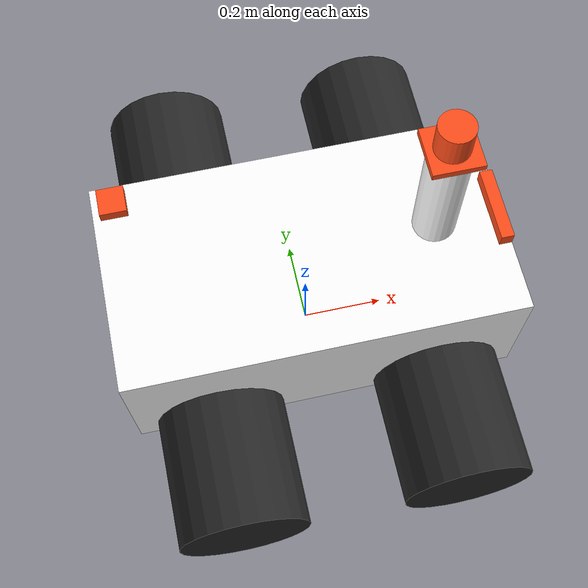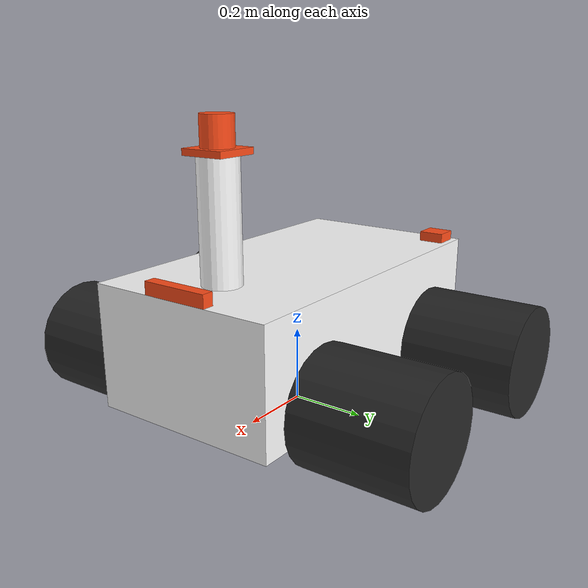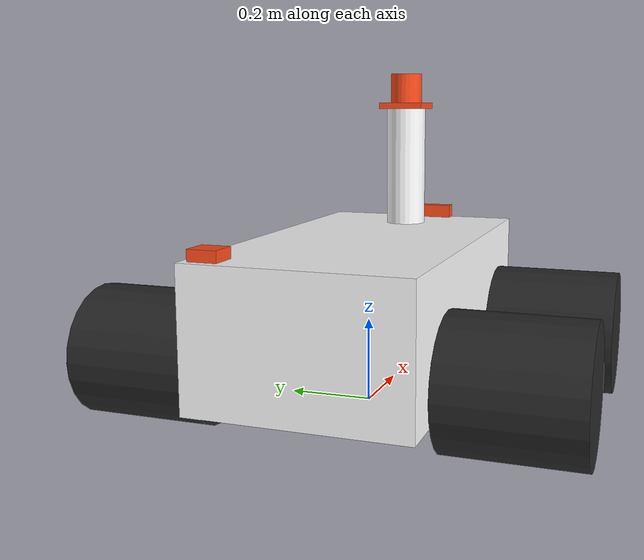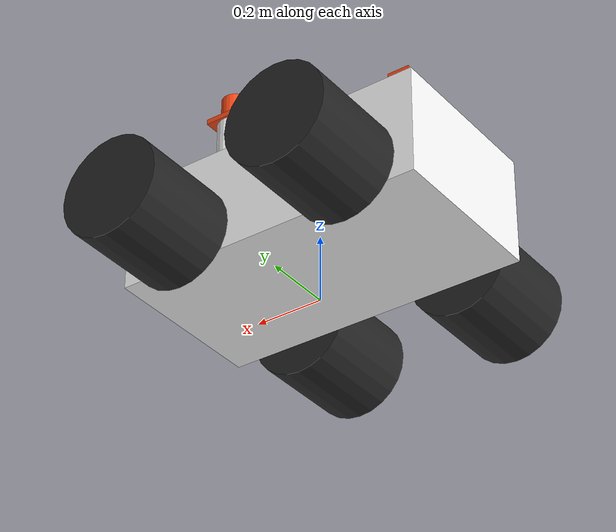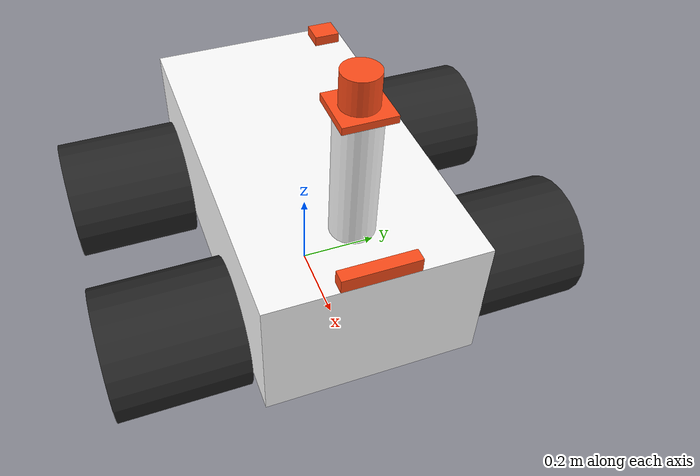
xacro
<?xml version="1.0"?>
<robot xmlns:xacro="http://www.ros.org/wiki/xacro" name="snower">

    <xacro:include filename="snower_core.xacro" />
    <xacro:include filename="zed2_camara.xacro" />
    <xacro:include filename="ouster_lidar.xacro" />
    <xacro:include filename="zedf9p_gnss.xacro" />

</robot>

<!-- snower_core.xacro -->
<robot xmlns:xacro="http://www.ros.org/wiki/xacro">

    <xacro:include filename="inertial_macros.xacro" />

    <material name="white">
        <color rgba="1 1 1 0.9" />
    </material>

    <material name="orange">
        <color rgba="1 0.3 0.1 1" />
    </material>

    <material name="blue">
        <color rgba="0.2 0.2 1 1" />
    </material>

    <material name="red">
        <color rgba="1 0 0 1" />
    </material>

    <material name="green">
        <color rgba="0 1 0 1" />
    </material>

    <material name="black">
        <color rgba="0.15 0.15 0.15 1" />
    </material>

    <!-- BASE LINK -->
    <link name="base_link"></link>

    <!-- CHASSIS LINK -->
    <joint name="chassis_joint" type="fixed">
        <parent link="base_link" />
        <child link="chassis_link" />
        <origin xyz="0 0 0.24" />
    </joint>
    <link name="chassis_link">
        <visual>
            <origin xyz="0 0 0" />
            <geometry>
                <box size="0.92 0.5 0.32" />
            </geometry>
            <material name="white" />
        </visual>
        <visual>
            <origin xyz="0.3 0 0.31" />
            <geometry>
                <cylinder radius="0.05" length="0.3" />
            </geometry>
            <material name="white" />
        </visual>
        <collision>
            <origin xyz="0 0 0" />
            <geometry>
                <box size="0.92 0.5 0.32" />
            </geometry>
            <material name="white" />
        </collision>
        <collision>
            <origin xyz="0.3 0 0.31" />
            <geometry>
                <cylinder radius="0.05" length="0.3" />
            </geometry>
            <material name="white" />
        </collision>
    </link>

    <!-- LEFT BACK WHEEL LINK -->
    <joint name="left_back_wheel_joint" type="fixed">
        <parent link="base_link" />
        <child link="left_back_wheel_link" />
        <origin xyz="-0.26 0.41 0.15" rpy="-${pi/2} 0 0" />
        <axis xyz="0 0 1" />
    </joint>
    <link name="left_back_wheel_link">
        <visual>
            <geometry>
                <cylinder radius="0.15" length="0.30" />
            </geometry>
            <material name="black" />
        </visual>
        <collision>
            <geometry>
                <cylinder radius="0.15" length="0.30" />
            </geometry>
            <material name="black" />
        </collision>
    </link>

    <!-- RIGHT BACK WHEEL LINK -->
    <joint name="right_back_wheel_joint" type="fixed">
        <parent link="base_link" />
        <child link="right_back_wheel_link" />
        <origin xyz="-0.26 -0.41 0.15" rpy="${pi/2} 0 0" />
        <axis xyz="0 0 -1" />
    </joint>
    <link name="right_back_wheel_link">
        <visual>
            <geometry>
                <cylinder radius="0.15" length="0.30" />
            </geometry>
            <material name="black" />
        </visual>
        <collision>
            <geometry>
                <cylinder radius="0.15" length="0.30" />
            </geometry>
            <material name="black" />
        </collision>
    </link>

    <!-- LEFT FRONT WHEEL LINK -->
    <joint name="left_front_wheel_joint" type="fixed">
        <parent link="base_link" />
        <child link="left_front_wheel_link" />
        <origin xyz="0.26 0.41 0.15" rpy="-${pi/2} 0 0" />
        <axis xyz="0 0 1" />
    </joint>
    <link name="left_front_wheel_link">
        <visual>
            <geometry>
                <cylinder radius="0.15" length="0.30" />
            </geometry>
            <material name="black" />
        </visual>
        <collision>
            <geometry>
                <cylinder radius="0.15" length="0.30" />
            </geometry>
            <material name="black" />
        </collision>
    </link>

    <!-- RIGHT FRONT WHEEL LINK -->
    <joint name="right_front_wheel_joint" type="fixed">
        <parent link="base_link" />
        <child link="right_front_wheel_link" />
        <origin xyz="0.26 -0.41 0.15" rpy="${pi/2} 0 0" />
        <axis xyz="0 0 -1" />
    </joint>
    <link name="right_front_wheel_link">
        <visual>
            <geometry>
                <cylinder radius="0.15" length="0.30" />
            </geometry>
            <material name="black" />
        </visual>
        <collision>
            <geometry>
                <cylinder radius="0.15" length="0.30" />
            </geometry>
            <material name="black" />
        </collision>
    </link>

</robot>

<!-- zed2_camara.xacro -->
<robot xmlns:xacro="http://www.ros.org/wiki/xacro">

    <joint name="base_to_zed2" type="fixed">
        <parent link="base_link" />
        <child link="zed2_camera_link" />
        <origin xyz="0.445 0 0.4165" />
    </joint>
    <link name="zed2_camera_link">
        <visual>
            <origin xyz="0 0 0" />
            <geometry>
                <box size="0.030 0.175 0.033" />
            </geometry>
            <material name="orange" />
        </visual>
        <collision>
            <origin xyz="0 0 0" />
            <geometry>
                <box size="0.030 0.175 0.033" />
            </geometry>
            <material name="orange" />
        </collision>
    </link>

</robot>

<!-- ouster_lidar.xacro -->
<robot xmlns:xacro="http://www.ros.org/wiki/xacro" >

  <joint name="base_to_lidar" type="fixed">
      <parent link="base_link"/>
      <child link="os_sensor"/>
      <origin xyz="0.3 0 0.753"/>
  </joint>
  <link name="os_sensor">
      <visual>
      <origin xyz="0 0 0"/>
         <geometry>
           <cylinder length="0.074" radius="0.04" />
         </geometry>
         <material name="orange"/>
      </visual>
      <visual>
        <origin xyz="0 0 -0.045"/>
        <geometry>
          <box size="0.112 0.112 0.016" />
        </geometry>
        <material name="orange"/>
      </visual>
      <collision>
      <origin xyz="0 0 0"/>
         <geometry>
           <cylinder length="0.074" radius="0.04" />
         </geometry>
         <material name="orange"/>
      </collision>
      <collision>
        <origin xyz="0 0 -0.045"/>
        <geometry>
          <box size="0.112 0.112 0.016" />
        </geometry>
        <material name="orange"/>
      </collision>
  </link>

</robot>

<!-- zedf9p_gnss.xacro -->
<robot xmlns:xacro="http://www.ros.org/wiki/xacro">

    <joint name="base_to_gnss" type="fixed">
        <parent link="base_link" />
        <child link="gnss_link" />
        <origin xyz="-0.41 0.2 0.413" />
    </joint>
    <link name="gnss_link">
        <visual>
            <origin xyz="0 0 0" />
            <geometry>
                <box size="0.063 0.067 0.026" />
            </geometry>
            <material name="orange" />
        </visual>
        <collision>
            <origin xyz="0 0 0" />
            <geometry>
                <box size="0.063 0.067 0.026" />
            </geometry>
            <material name="orange" />
        </collision>
    </link>

</robot>
